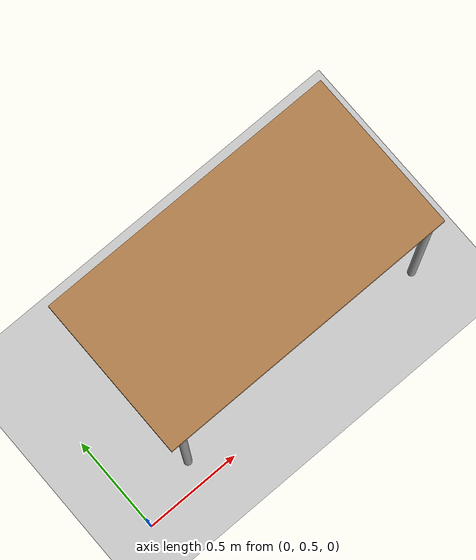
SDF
<sdf version="1.6">
    <world name="demo world">
        <!--ground-->
        <include>
            <uri>model://ground_plane</uri>
        </include>

        <!--light-->
        <include>
            <uri>model://sun</uri>
        </include>

        <!--custom wall-->

        <!--custom table-->
        <include>
            <uri>model://table</uri>
            <pose>1 1 0 0 0 0</pose>
        </include>

        <!--camera initial perspective-->
        <gui>
            <camera name="user camera">
                <pose>3 3 2 0 0.5 -1.57</pose>
            </camera>
        </gui>

        <!--physics params sim-->
        <physics>
            <max_step_size>0.001</max_step_size>
            <real_time_update_rate>1000</real_time_update_rate>
        </physics>

    </world>
</sdf>

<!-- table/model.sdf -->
<sdf version="1.5">
  <model name="table">
    <static>true</static>
    <link name="link">
      <collision name="surface">
        <pose>0 0 1.0 0 0 0</pose>
        <geometry>
          <box>
            <size>1.5 0.8 0.03</size>
          </box>
        </geometry>
        <surface>
          <friction>
            <ode>
              <mu>0.6</mu>
              <mu2>0.6</mu2>
            </ode>
          </friction>
        </surface>
      </collision>
      <visual name="visual1">
        <pose>0 0 1.0 0 0 0</pose>
        <geometry>
          <box>
            <size>1.5 0.8 0.03</size>
          </box>
        </geometry>
        <material>
          <script>
            <uri>model://media/materials/scripts/gazebo.material</uri>
            <name>Gazebo/Wood</name>
          </script>
        </material>
      </visual>
      <collision name="front_left_leg">
        <pose>0.68 0.38 0.5 0 0 0</pose>
        <geometry>
          <cylinder>
            <radius>0.02</radius>
            <length>1.0</length>
          </cylinder>
        </geometry>
      </collision>
      <visual name="front_left_leg">
        <pose>0.68 0.38 0.5 0 0 0</pose>
        <geometry>
          <cylinder>
            <radius>0.02</radius>
            <length>1.0</length>
          </cylinder>
        </geometry>
        <material>
          <script>
            <uri>model://media/materials/scripts/gazebo.material</uri>
            <name>Gazebo/Grey</name>
          </script>
        </material>
      </visual>
      <collision name="front_right_leg">
        <pose>0.68 -0.38 0.5 0 0 0</pose>
        <geometry>
          <cylinder>
            <radius>0.02</radius>
            <length>1.0</length>
          </cylinder>
        </geometry>
      </collision>
      <visual name="front_right_leg">
        <pose>0.68 -0.38 0.5 0 0 0</pose>
        <geometry>
          <cylinder>
            <radius>0.02</radius>
            <length>1.0</length>
          </cylinder>
        </geometry>
        <material>
          <script>
            <uri>model://media/materials/scripts/gazebo.material</uri>
            <name>Gazebo/Grey</name>
          </script>
        </material>
      </visual>
      <collision name="back_right_leg">
        <pose>-0.68 -0.38 0.5 0 0 0</pose>
        <geometry>
          <cylinder>
            <radius>0.02</radius>
            <length>1.0</length>
          </cylinder>
        </geometry>
      </collision>
      <visual name="back_right_leg">
        <pose>-0.68 -0.38 0.5 0 0 0</pose>
        <geometry>
          <cylinder>
            <radius>0.02</radius>
            <length>1.0</length>
          </cylinder>
        </geometry>
        <material>
          <script>
            <uri>model://media/materials/scripts/gazebo.material</uri>
            <name>Gazebo/Grey</name>
          </script>
        </material>
      </visual>
      <collision name="back_left_leg">
        <pose>-0.68 0.38 0.5 0 0 0</pose>
        <geometry>
          <cylinder>
            <radius>0.02</radius>
            <length>1.0</length>
          </cylinder>
        </geometry>
      </collision>
      <visual name="back_left_leg">
        <pose>-0.68 0.38 0.5 0 0 0</pose>
        <geometry>
          <cylinder>
            <radius>0.02</radius>
            <length>1.0</length>
          </cylinder>
        </geometry>
        <material>
          <script>
            <uri>model://media/materials/scripts/gazebo.material</uri>
            <name>Gazebo/Grey</name>
          </script>
        </material>
      </visual>
    </link>
  </model>
</sdf>
